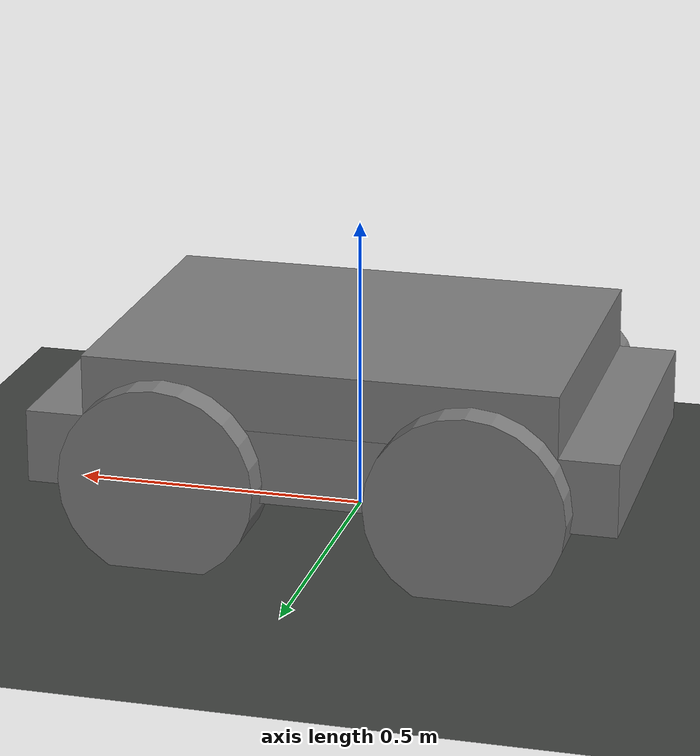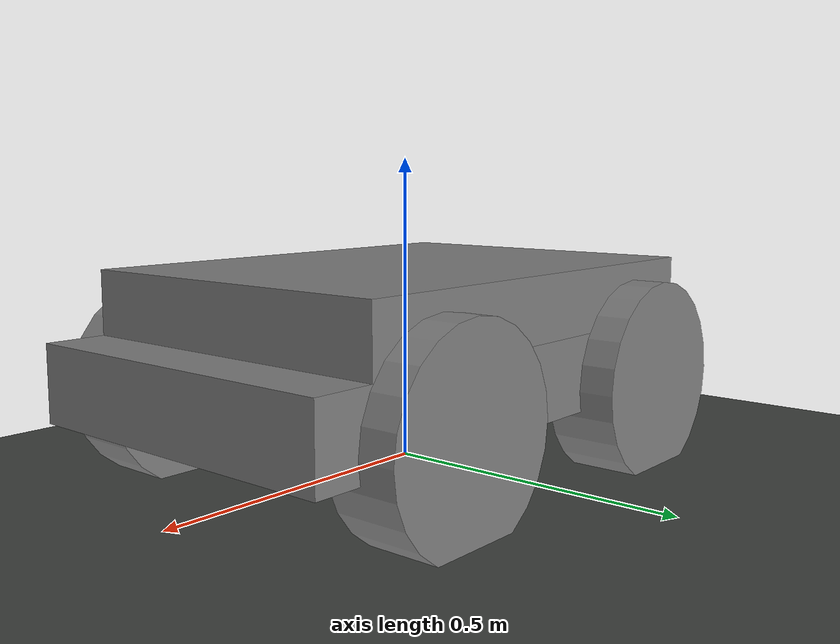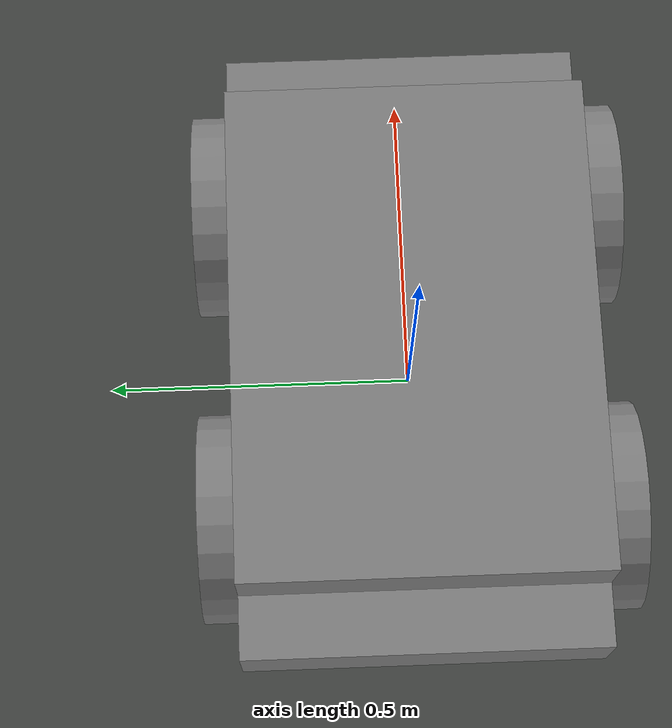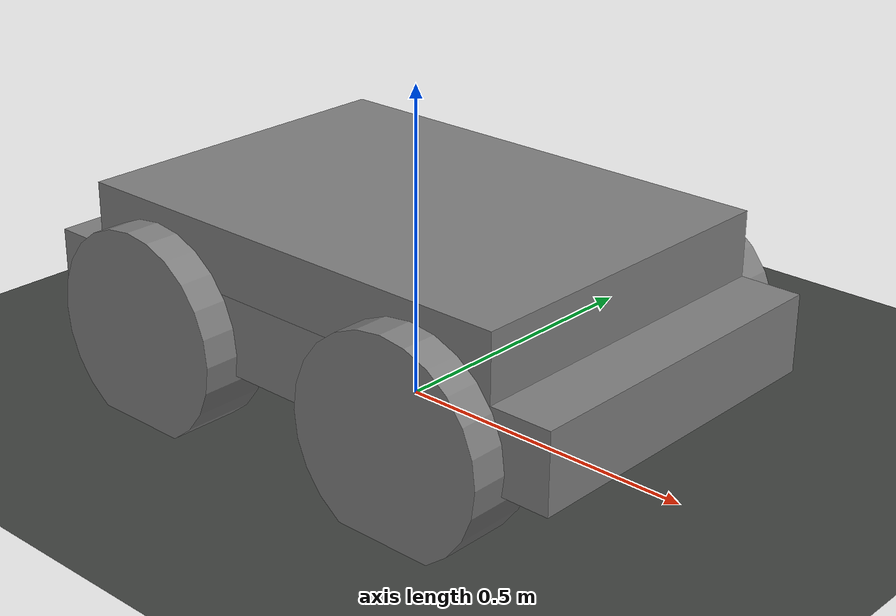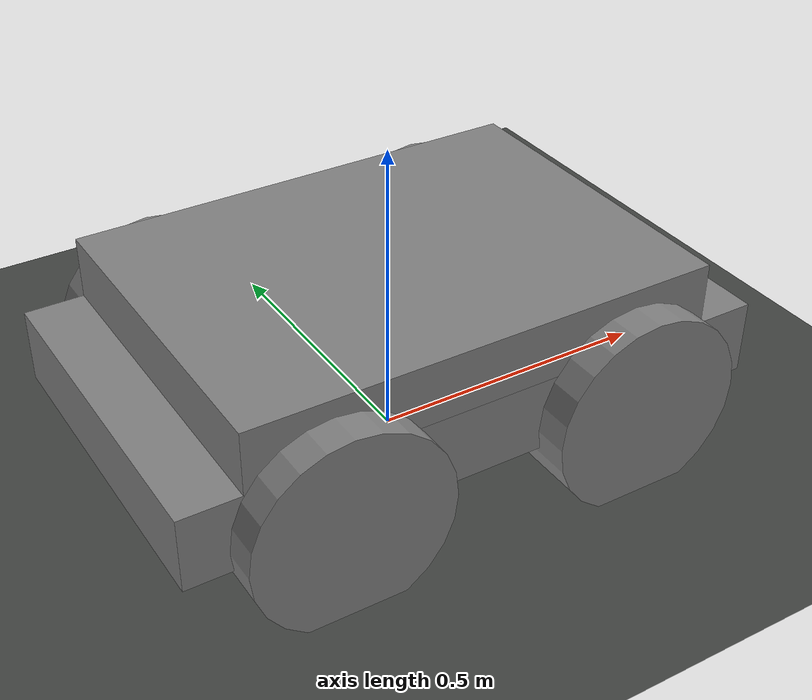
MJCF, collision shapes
<mujoco model="husky">
    <include file="assets/assets.xml"/>
    <include file="husky/assets.xml"/>

    <worldbody>
        <include file="assets/basic_scene.xml" />
        <include file="husky/husky.urdf.xml" />
    </worldbody>

    <include file = 'husky/actuator.xml' />
</mujoco>

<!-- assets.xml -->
<mujocoinclude>
    <statistic meansize="0.767828" extent="17.3945" center="-1.30273 -0.281443 0.819464" />
    <option timestep="0.001" />

    <asset>
        <texture name="texplane" type="2d" builtin="checker" rgb1=".2 .3 .4" rgb2=".1 0.2 0.3" width="512" height="512"/>
        <material name="MatGnd" reflectance="0.5" texture="texplane" texrepeat="1 1" texuniform="true"/>
    </asset>
</mujocoinclude>

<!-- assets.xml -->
<mujocoinclude>

    <default>
        <default class="husky">
            <material specular="0.5" shininess="0.25"/>
            <general dyntype="none" biastype="affine" ctrlrange="-2.8973 2.8973" forcerange="-87 87"/>

            <default class="husky_visual">
                <geom type="mesh" contype="0" conaffinity="0" group="2"/>
            </default>

            <default class="husky_collision">
                <geom type="mesh" group="3"/>
            </default>
        </default>
    </default>

    <compiler angle="radian" autolimits="true" meshdir = "../"/>

    <asset>
        <material class="husky" name="orange" rgba="0.996 0.941 0.412 1.0"/>
        <material class="husky" name="black" rgba="0.231 0.231 0.231 1.0"/>

        <!-- Visual meshes -->
        <mesh name="base_link"     file="meshs/base_link.stl"/>
        <mesh name="wheel"         file="meshs/wheel.stl"/>
        <mesh name="bumper"        file="meshs/bumper.stl"/>
        <mesh name="top_chassis"   file="meshs/top_chassis.stl"/>
        <mesh name="top_structure" file="meshs/roas_dyros.STL"/>
        <mesh name="top_plate"     file="meshs/top_plate.stl"/>
        <mesh name="user_rail"     file="meshs/user_rail.stl"/>

    </asset>
</mujocoinclude>

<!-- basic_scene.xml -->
<mujocoinclude>
    <geom name="ground" pos="0 0 -0.01" rgba="0.25 0.26 0.25 1" size="10 10 2" type="plane" contype="1" conaffinity="1" />
    <light cutoff="4.0" diffuse="1 1 1" dir="-0.9 -0.9 -2.5" directional="true" exponent="20" pos="0.9 0.9 2.5" specular="0 0 0" />
</mujocoinclude>

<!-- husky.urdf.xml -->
<mujocoinclude>
    <body name="base_footprint" pos="0 0 0.1" childclass="husky">
        <joint type="free" stiffness="0" damping="0" frictionloss="0" armature="0" />

        <body name="base" pos="0 0 0">
            <inertial pos="-0.00065 -0.085 0.062"  mass="46.034" fullinertia="0.6022 1.7386 2.0296 -0.02364 -0.1197 -0.001544"/>
            <geom class="husky_collision" size="0.4937 0.28545 0.061875" pos="0 0 0.061875" type="box"/>
            <geom class="husky_collision" size="0.39496 0.28545 0.051875" pos="0 0 0.175625" type="box"/>
            <geom class="husky_visual" pos="0.272 0 0.245" type="mesh" mesh="user_rail" material="black"/>
            <geom class="husky_visual" pos="0.0812 0 0.245" type="mesh" mesh="top_plate" material="black"/>
            <geom class="husky_visual" pos="-0.48 0 0.091" quat="0 0 1 0" type="mesh" mesh="bumper" rgba="0.2 0.2 0.2 1.0"/>
            <geom class="husky_visual" pos="0.48 0 0.091" type="mesh" mesh="bumper" rgba="0.2 0.2 0.2 1.0"/>
            <geom class="husky_visual" pos="0 0 0" type="mesh" mesh="base_link" rgba="0.8 0.8 0.0 1.0"/>
            <geom class="husky_visual" pos="0 0 0" type="mesh" mesh="top_chassis" rgba="0.8 0.8 0.0 1.0"/>
            <site name="husky_site"  size = "0.005" rgba = ".1 .1 .9 1" type = "sphere" />

            <body name="front_left_wheel" pos="0.256 0.2854 0.03282">
                <inertial pos="0 0 0" quat="0.707107 0 0 0.707107" mass="2.637" diaginertia="0.04411 0.02467 0.02467"/>
                <joint name="front_left_wheel" type="hinge" pos="0 0 0" axis="0 1 0"/>
                <geom class="husky_visual" pos="0 0 0" quat="0 0 0 1" mesh="wheel" material="black"/>
                <geom class="husky_collision" size="0.1651 0.05715" quat="0.707107 0.707106 0 0" type="cylinder"/>
            </body>

            <body name="front_right_wheel" pos="0.256 -0.2854 0.03282">
                <inertial pos="0 0 0" quat="0.707107 0 0 0.707107" mass="2.637" diaginertia="0.04411 0.02467 0.02467"/>
                <joint name="front_right_wheel" type="hinge" pos="0 0 0" axis="0 1 0"/>
                <geom class="husky_visual" pos="0 0 0" quat="0 0 0 1" mesh="wheel" material="black"/>
                <geom class="husky_collision" size="0.1651 0.05715" quat="0.707107 0.707106 0 0" type="cylinder"/>
            </body>

            <body name="rear_left_wheel" pos="-0.256 0.2854 0.03282">
                <inertial pos="0 0 0" quat="0.707107 0 0 0.707107" mass="2.637" diaginertia="0.04411 0.02467 0.02467"/>
                <joint name="rear_left_wheel" type="hinge" pos="0 0 0" axis="0 1 0"/>
                <geom class="husky_visual" pos="0 0 0" quat="0 0 0 1" mesh="wheel" material="black"/>
                <geom class="husky_collision" size="0.1651 0.05715" quat="0.707107 0.707106 0 0" type="cylinder"/>
            </body>

            <body name="rear_right_wheel" pos="-0.256 -0.2854 0.03282">
                <inertial pos="0 0 0" quat="0.707107 0 0 0.707107" mass="2.637" diaginertia="0.04411 0.02467 0.02467"/>
                <joint name="rear_right_wheel" type="hinge" pos="0 0 0" axis="0 1 0" />
                <geom class="husky_visual" pos="0 0 0" quat="0 0 0 1" mesh="wheel" material="black"/>
                <geom class="husky_collision" size="0.1651 0.05715" quat="0.707107 0.707106 0 0" type="cylinder"/>
            </body>
        </body>
    </body>
</mujocoinclude>

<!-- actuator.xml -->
<mujocoinclude>

    <actuator>

        <motor name="front_left_wheel"  joint="front_left_wheel"  ctrlrange="-50 50"/>
        <motor name="front_right_wheel" joint="front_right_wheel" ctrlrange="-50 50"/>
        <motor name="rear_left_wheel"   joint="rear_left_wheel"   ctrlrange="-50 50"/>
        <motor name="rear_right_wheel"  joint="rear_right_wheel"  ctrlrange="-50 50"/>
    </actuator>

    <sensor>
        <framepos name="position_sensor" objtype="site" objname="husky_site"/>
        <framelinvel name="linear_velocity_sensor" objtype="site" objname="husky_site"/>
        <frameangvel name="angular_velocity_sensor" objtype="site" objname="husky_site"/>
    </sensor>

</mujocoinclude>
